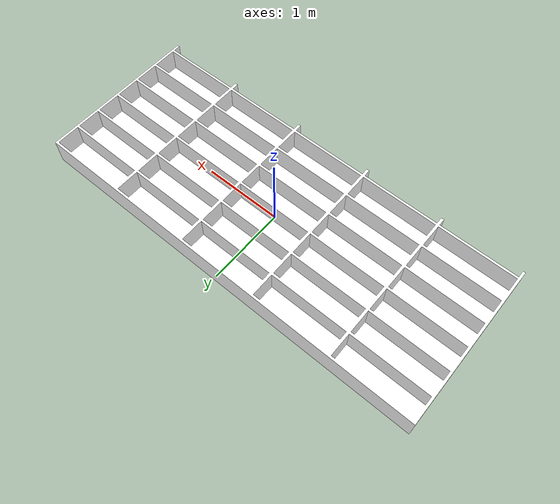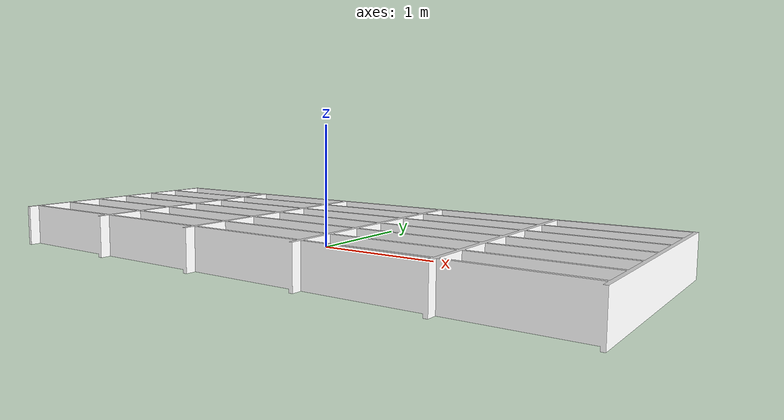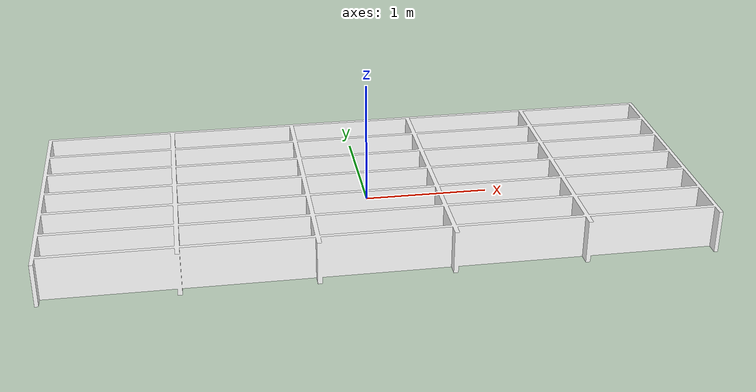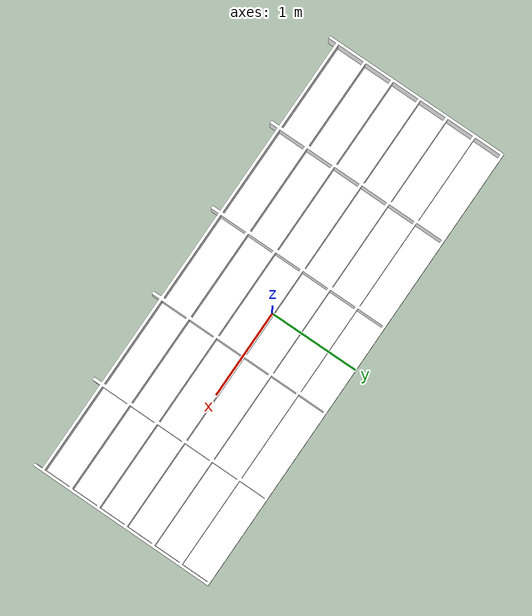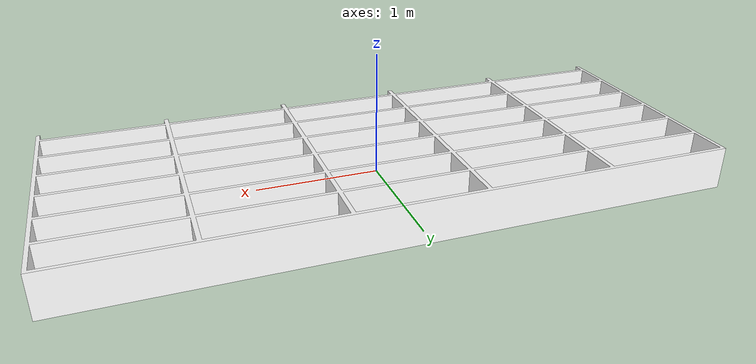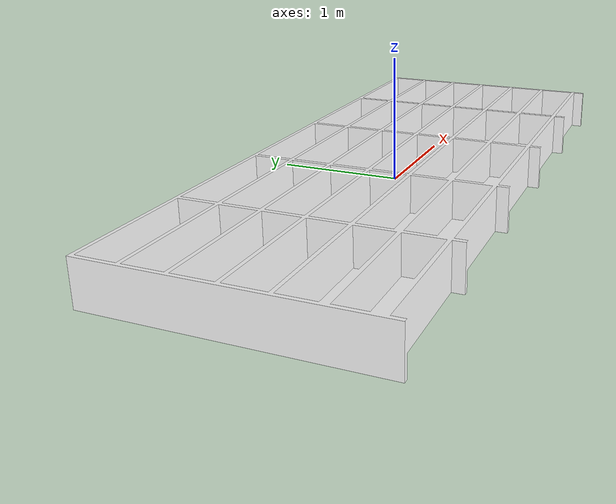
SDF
<?xml version="1.0"?>
<sdf version="1.8">
  <model name="erc_shelf">
    <static>true</static>
    <link name="shelf_base_link">

      <visual name="base_link_shelf_visual">
        <pose>0 0 0 0 0 0</pose>
        <geometry>
          <mesh>
            <uri>model://erc_description/models/shelf/meshes/erc_base_shelf.STL</uri>

          </mesh>
        </geometry>
        <material>
          <ambient>1 1 1 1</ambient>
          <diffuse>1 1 1 1</diffuse>
        </material>
      </visual>

      <collision name="base_link_shelf_collision">
        <pose>0 0 0 0 0 0</pose>
        <geometry>
          <mesh>
            <uri>model://erc_description/models/shelf/meshes/erc_base_shelf.STL</uri>

          </mesh>
        </geometry>
      </collision>

    </link>
  </model>
</sdf>
